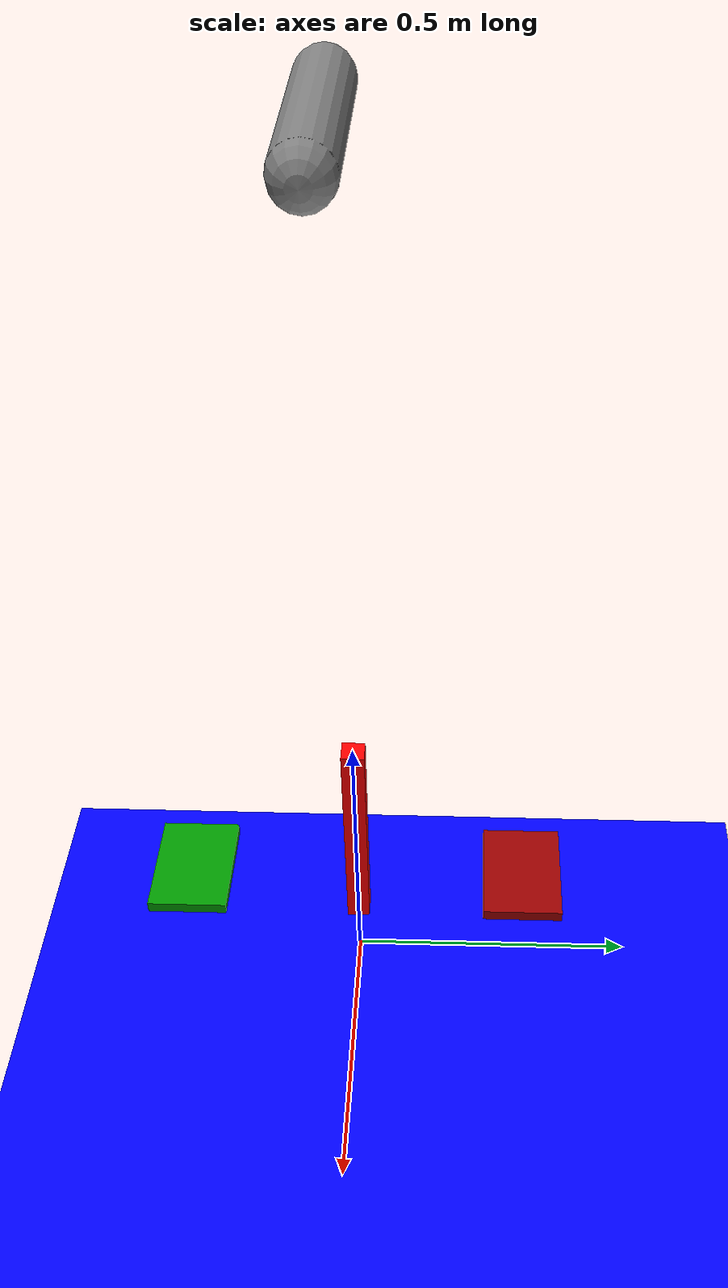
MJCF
<mujoco model="insole">

    <option>
    <flag gravity="enable"/>
  </option>
    <asset>
        <texture type="skybox" builtin="gradient" rgb1="1 1 1" rgb2=".6 .8 1"
                 width="256" height="256"/>
        <texture name="sample_text" type="cube" builtin="flat" mark="cross" width="128" height="128"
                 rgb1="0.6 0.6 0.6" rgb2="0.6 0.6 0.6" markrgb="1 1 1" />
        <material name='red' texture="sample_text" texuniform="true" rgba="1.0 0 0 1"/>
        <material name="green" texture="sample_text" texuniform="true" rgba="0 1.0 0 1"/>
    </asset>
  <size njmax="8000" nconmax="4000"/>

    <worldbody>
        <light pos="0 1 1" dir="0 -1 -1" diffuse="1 1 1"/>
        <geom type="plane" size="1 1 0.1" rgba="0 0 1.0 0.2" friction="0.1 0.05 0.01"/>

        <!-- gripper-->
        <body>
            <joint name="jup" type="slide" axis="0 0 1" limited="true" range="0.008 8.5"/>
            <geom  type="capsule" fromto="0 0 1.6 0.3 0  1.6" size="0.04" mass="0.1"/>
    <!--        left finger-->
            <body pos="0 0.3 0.2" quat="1 0 0 0">
            <joint name="left_finger" type="slide" axis="0 1 0" limited="true" range="-0.3 0" damping="1"/>
<!--            solimp, solref:  Constraint solver parameters for contact simulation-->
            <geom name='left_red' type="box" material="red" size="0.1 0.07 0.01" mass="0.01"/>
<!--                  friction="1 0.05 0.01" solimp="1.1 1.2 0.001 0.5 2" solref="0.02 1"-->
            </body>
<!--            right finger-->
            <body pos="0 -0.3 0.2">
                <joint name="right_finger" type="slide" axis="0 1 0" limited="true" range="0 0.3" damping="1"/>
                <geom name='right_green' type="box" material="green" size="0.1 0.07 0.01" mass="0.01"/>
<!--                      friction="1 0.05 0.01" solimp="1.1 1.2 0.001 0.5 2" solref="0.02 1"-->
            </body>
        </body>

<!--        soft cylinder-->
        <body pos="0 0 0.3">
            <freejoint/>
            <geom name="box" mass="0.1" pos="0 0 0" rgba="1 0 0 1" size="0.02 0.02 0.2" type="box" condim="3"
                 friction="0.2 0.35 0.01" solimp="1.1 1.2 0.001 0.5 2" solref="0.02 1"/>
        </body>
    </worldbody>

    <equality>
        <joint name="left_box_right_box" joint1="left_finger" joint2="right_finger" polycoef="0 -1 0 0 0"/>
    </equality>

    <actuator>
        <motor name="gripper" gear="10" joint="left_finger" />
        <motor name="up_motor" gear="10" joint="jup" />
    </actuator>

</mujoco>
